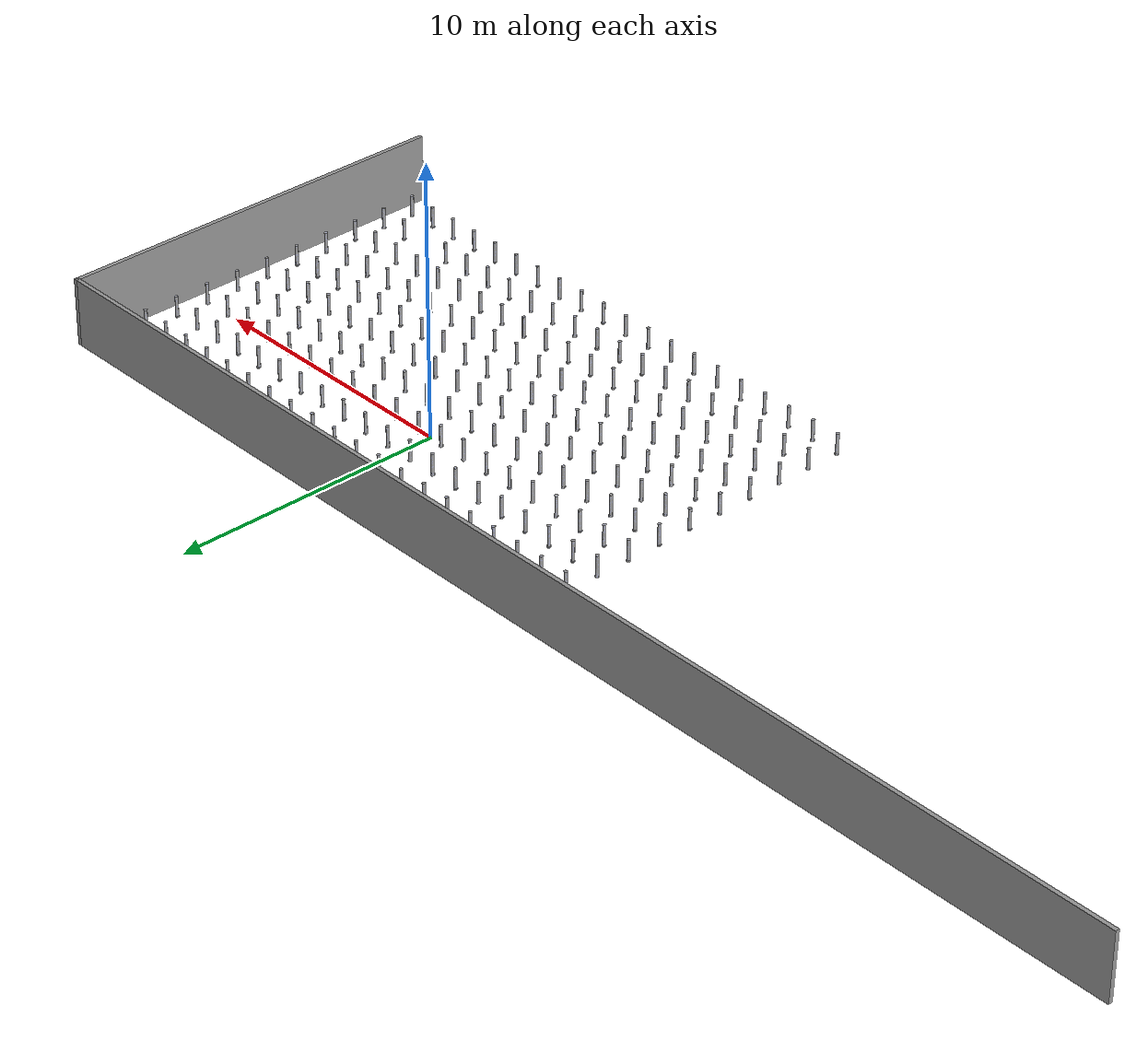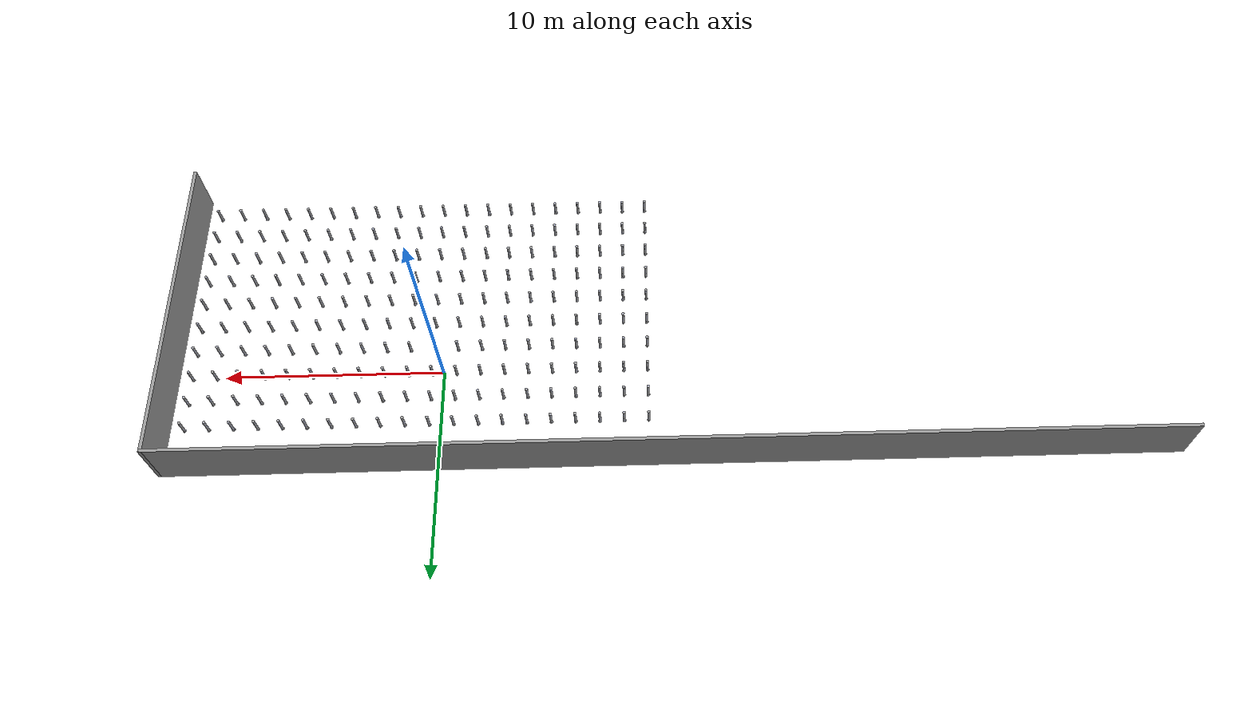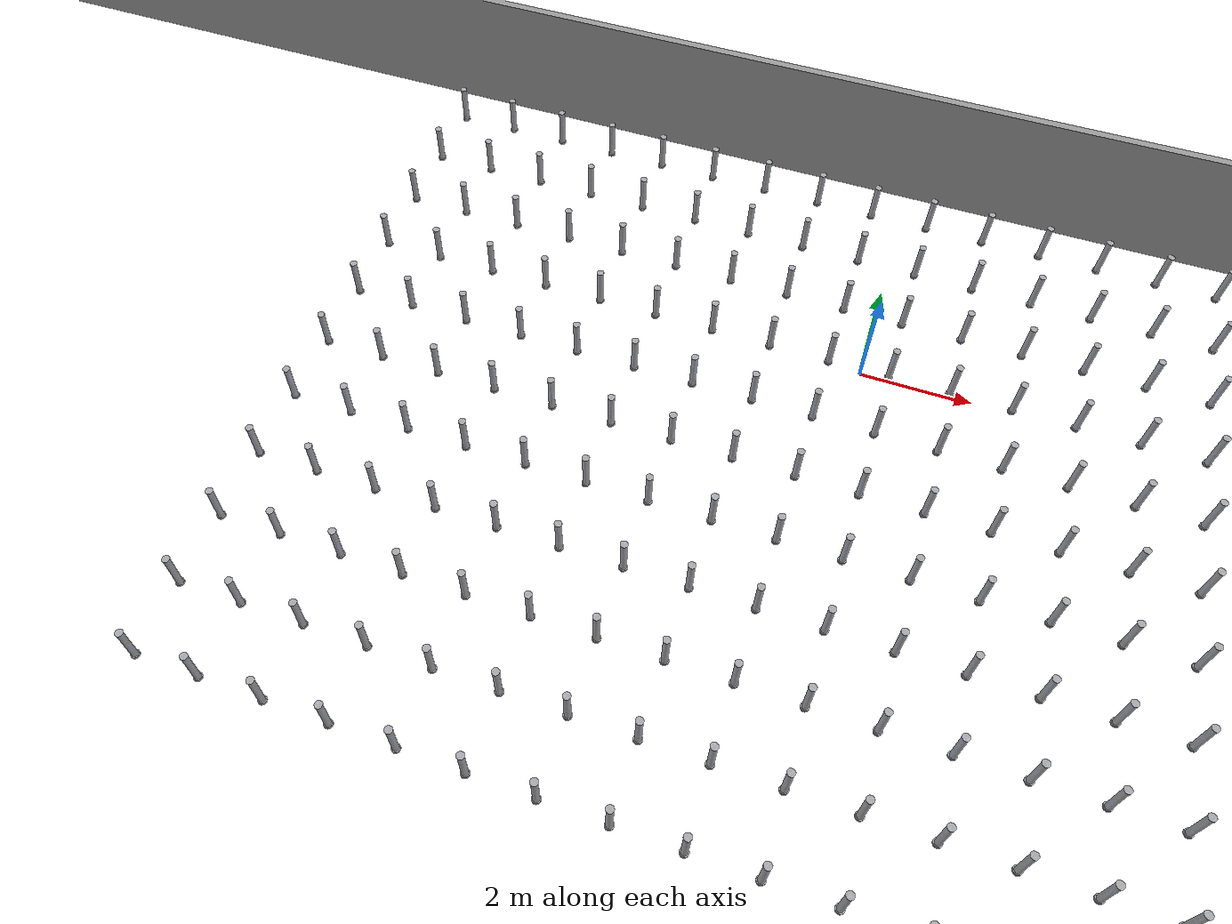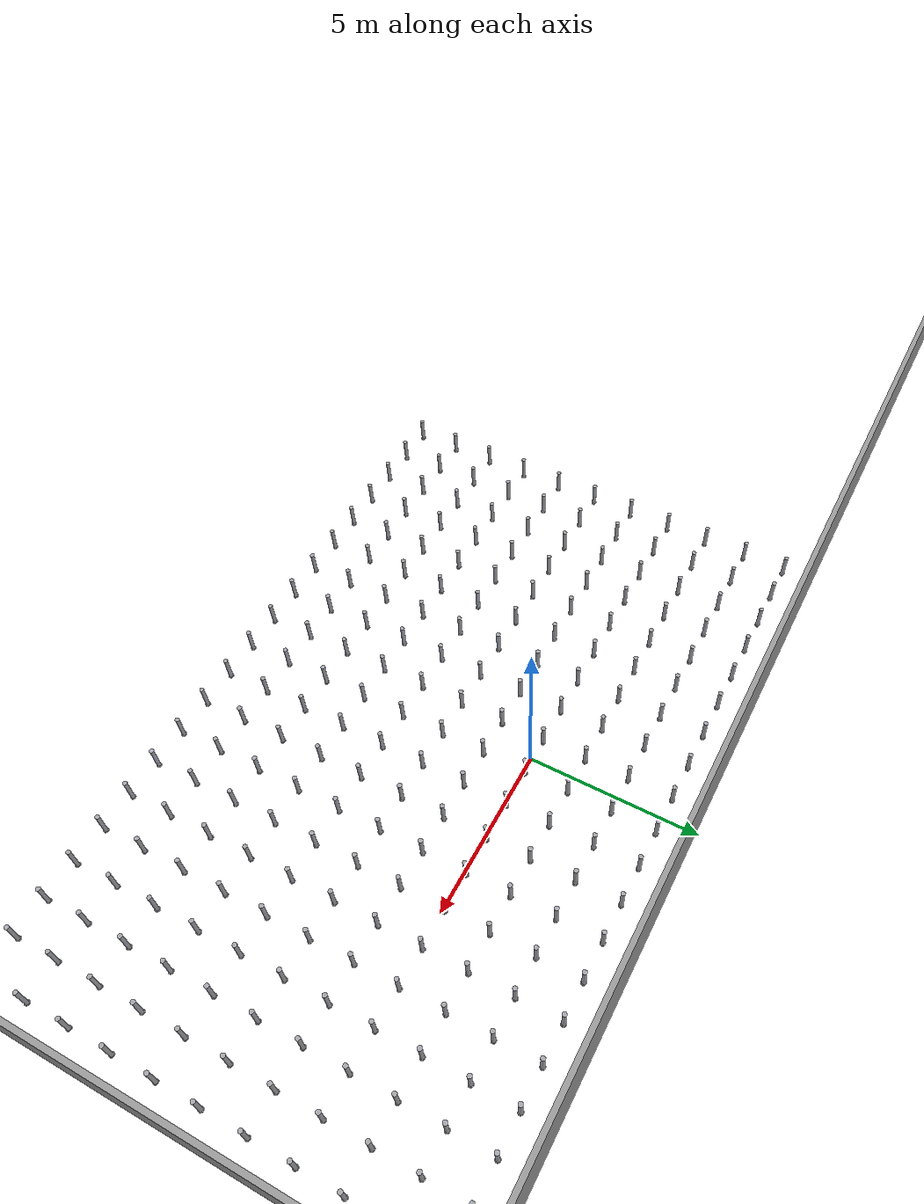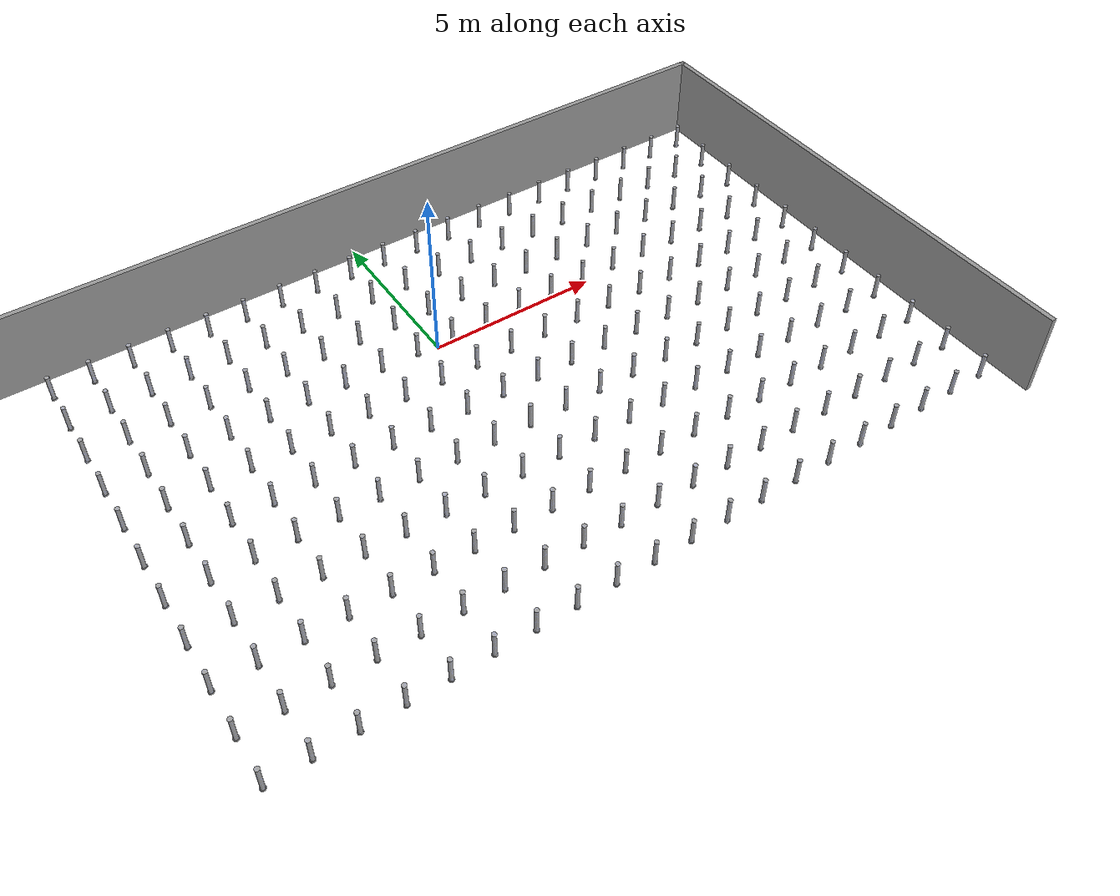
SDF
<sdf version="1.7">
 <model name="world">
  <pose>-10.459 -2.598 0 0 -0 0</pose>
  <link name="Wall_10">
   <collision name="Wall_10_Collision">
    <geometry><box><size>15.0001 0.15 2.5</size></box></geometry>
    <pose>0 0 1.25 0 -0 0</pose>
   </collision>
   <visual name="Wall_10_Visual">
    <pose>0 0 1.25 0 -0 0</pose>
    <geometry><box><size>15.0001 0.15 2.5</size></box></geometry>
    <material>
     <script><uri>file://media/materials/scripts/gazebo.material</uri><name>Gazebo/Grey</name></script>
     <ambient>1 1 1 1</ambient>
    </material>
    <meta><layer>0</layer></meta>
   </visual>
   <pose>22.68 0 0 0 -0 1.5708</pose>
  </link>
  <link name="Wall_11">
   <collision name="Wall_11_Collision">
    <geometry><box><size>45.51 0.15 2.5</size></box></geometry>
    <pose>0 0 1.25 0 -0 0</pose>
   </collision>
   <visual name="Wall_11_Visual">
    <pose>0 0 1.25 0 -0 0</pose>
    <geometry><box><size>45.51 0.15 2.5</size></box></geometry>
    <material>
     <script><uri>file://media/materials/scripts/gazebo.material</uri><name>Gazebo/Grey</name></script>
     <ambient>1 1 1 1</ambient>
    </material>
    <meta><layer>0</layer></meta>
   </visual>
   <pose>0 7.425 0 0 -0 3.14159</pose>
  </link>
  <include>
   <uri>model://pillar</uri>
   <name>pillar_1.0000000000000284_-6.5</name>
   <pose>1.0000000000000284 -6.5 0 0 0 0</pose>
  </include>
  <include>
   <uri>model://pillar</uri>
   <name>pillar_1.0000000000000284_-5.2</name>
   <pose>1.0000000000000284 -5.2 0 0 0 0</pose>
  </include>
  <include>
   <uri>model://pillar</uri>
   <name>pillar_1.0000000000000284_-3.9000000000000004</name>
   <pose>1.0000000000000284 -3.9000000000000004 0 0 0 0</pose>
  </include>
  <include>
   <uri>model://pillar</uri>
   <name>pillar_1.0000000000000284_-2.6000000000000005</name>
   <pose>1.0000000000000284 -2.6000000000000005 0 0 0 0</pose>
  </include>
  <include>
   <uri>model://pillar</uri>
   <name>pillar_1.0000000000000284_-1.3000000000000007</name>
   <pose>1.0000000000000284 -1.3000000000000007 0 0 0 0</pose>
  </include>
  <include>
   <uri>model://pillar</uri>
   <name>pillar_1.0000000000000284_-8.881784197001252e-16</name>
   <pose>1.0000000000000284 -8.881784197001252e-16 0 0 0 0</pose>
  </include>
  <include>
   <uri>model://pillar</uri>
   <name>pillar_1.0000000000000284_1.299999999999999</name>
   <pose>1.0000000000000284 1.299999999999999 0 0 0 0</pose>
  </include>
  <include>
   <uri>model://pillar</uri>
   <name>pillar_1.0000000000000284_2.599999999999998</name>
   <pose>1.0000000000000284 2.599999999999998 0 0 0 0</pose>
  </include>
  <include>
   <uri>model://pillar</uri>
   <name>pillar_1.0000000000000284_3.8999999999999986</name>
   <pose>1.0000000000000284 3.8999999999999986 0 0 0 0</pose>
  </include>
  <include>
   <uri>model://pillar</uri>
   <name>pillar_1.0000000000000284_5.199999999999999</name>
   <pose>1.0000000000000284 5.199999999999999 0 0 0 0</pose>
  </include>
  <include>
   <uri>model://pillar</uri>
   <name>pillar_1.0000000000000284_6.499999999999998</name>
   <pose>1.0000000000000284 6.499999999999998 0 0 0 0</pose>
  </include>
  <include>
   <uri>model://pillar</uri>
   <name>pillar_2.10000000000003_-6.5</name>
   <pose>2.10000000000003 -6.5 0 0 0 0</pose>
  </include>
  <include>
   <uri>model://pillar</uri>
   <name>pillar_2.10000000000003_-5.2</name>
   <pose>2.10000000000003 -5.2 0 0 0 0</pose>
  </include>
  <include>
   <uri>model://pillar</uri>
   <name>pillar_2.10000000000003_-3.9000000000000004</name>
   <pose>2.10000000000003 -3.9000000000000004 0 0 0 0</pose>
  </include>
  <include>
   <uri>model://pillar</uri>
   <name>pillar_2.10000000000003_-2.6000000000000005</name>
   <pose>2.10000000000003 -2.6000000000000005 0 0 0 0</pose>
  </include>
  <include>
   <uri>model://pillar</uri>
   <name>pillar_2.10000000000003_-1.3000000000000007</name>
   <pose>2.10000000000003 -1.3000000000000007 0 0 0 0</pose>
  </include>
  <include>
   <uri>model://pillar</uri>
   <name>pillar_2.10000000000003_-8.881784197001252e-16</name>
   <pose>2.10000000000003 -8.881784197001252e-16 0 0 0 0</pose>
  </include>
  <include>
   <uri>model://pillar</uri>
   <name>pillar_2.10000000000003_1.299999999999999</name>
   <pose>2.10000000000003 1.299999999999999 0 0 0 0</pose>
  </include>
  <include>
   <uri>model://pillar</uri>
   <name>pillar_2.10000000000003_2.599999999999998</name>
   <pose>2.10000000000003 2.599999999999998 0 0 0 0</pose>
  </include>
  <include>
   <uri>model://pillar</uri>
   <name>pillar_2.10000000000003_3.8999999999999986</name>
   <pose>2.10000000000003 3.8999999999999986 0 0 0 0</pose>
  </include>
  <include>
   <uri>model://pillar</uri>
   <name>pillar_2.10000000000003_5.199999999999999</name>
   <pose>2.10000000000003 5.199999999999999 0 0 0 0</pose>
  </include>
  <include>
   <uri>model://pillar</uri>
   <name>pillar_2.10000000000003_6.499999999999998</name>
   <pose>2.10000000000003 6.499999999999998 0 0 0 0</pose>
  </include>
  <include>
   <uri>model://pillar</uri>
   <name>pillar_3.2000000000000313_-6.5</name>
   <pose>3.2000000000000313 -6.5 0 0 0 0</pose>
  </include>
  <include>
   <uri>model://pillar</uri>
   <name>pillar_3.2000000000000313_-5.2</name>
   <pose>3.2000000000000313 -5.2 0 0 0 0</pose>
  </include>
  <include>
   <uri>model://pillar</uri>
   <name>pillar_3.2000000000000313_-3.9000000000000004</name>
   <pose>3.2000000000000313 -3.9000000000000004 0 0 0 0</pose>
  </include>
  <include>
   <uri>model://pillar</uri>
   <name>pillar_3.2000000000000313_-2.6000000000000005</name>
   <pose>3.2000000000000313 -2.6000000000000005 0 0 0 0</pose>
  </include>
  <include>
   <uri>model://pillar</uri>
   <name>pillar_3.2000000000000313_-1.3000000000000007</name>
   <pose>3.2000000000000313 -1.3000000000000007 0 0 0 0</pose>
  </include>
  <include>
   <uri>model://pillar</uri>
   <name>pillar_3.2000000000000313_-8.881784197001252e-16</name>
   <pose>3.2000000000000313 -8.881784197001252e-16 0 0 0 0</pose>
  </include>
  <include>
   <uri>model://pillar</uri>
   <name>pillar_3.2000000000000313_1.299999999999999</name>
   <pose>3.2000000000000313 1.299999999999999 0 0 0 0</pose>
  </include>
  <include>
   <uri>model://pillar</uri>
   <name>pillar_3.2000000000000313_2.599999999999998</name>
   <pose>3.2000000000000313 2.599999999999998 0 0 0 0</pose>
  </include>
  <include>
   <uri>model://pillar</uri>
   <name>pillar_3.2000000000000313_3.8999999999999986</name>
   <pose>3.2000000000000313 3.8999999999999986 0 0 0 0</pose>
  </include>
  <include>
   <uri>model://pillar</uri>
   <name>pillar_3.2000000000000313_5.199999999999999</name>
   <pose>3.2000000000000313 5.199999999999999 0 0 0 0</pose>
  </include>
  <include>
   <uri>model://pillar</uri>
   <name>pillar_3.2000000000000313_6.499999999999998</name>
   <pose>3.2000000000000313 6.499999999999998 0 0 0 0</pose>
  </include>
  <include>
   <uri>model://pillar</uri>
   <name>pillar_4.300000000000033_-6.5</name>
   <pose>4.300000000000033 -6.5 0 0 0 0</pose>
  </include>
  <include>
   <uri>model://pillar</uri>
   <name>pillar_4.300000000000033_-5.2</name>
   <pose>4.300000000000033 -5.2 0 0 0 0</pose>
  </include>
  <include>
   <uri>model://pillar</uri>
   <name>pillar_4.300000000000033_-3.9000000000000004</name>
   <pose>4.300000000000033 -3.9000000000000004 0 0 0 0</pose>
  </include>
  <include>
   <uri>model://pillar</uri>
   <name>pillar_4.300000000000033_-2.6000000000000005</name>
   <pose>4.300000000000033 -2.6000000000000005 0 0 0 0</pose>
  </include>
  <include>
   <uri>model://pillar</uri>
   <name>pillar_4.300000000000033_-1.3000000000000007</name>
   <pose>4.300000000000033 -1.3000000000000007 0 0 0 0</pose>
  </include>
  <include>
   <uri>model://pillar</uri>
   <name>pillar_4.300000000000033_-8.881784197001252e-16</name>
   <pose>4.300000000000033 -8.881784197001252e-16 0 0 0 0</pose>
  </include>
  <include>
   <uri>model://pillar</uri>
   <name>pillar_4.300000000000033_1.299999999999999</name>
   <pose>4.300000000000033 1.299999999999999 0 0 0 0</pose>
  </include>
  <include>
   <uri>model://pillar</uri>
   <name>pillar_4.300000000000033_2.599999999999998</name>
   <pose>4.300000000000033 2.599999999999998 0 0 0 0</pose>
  </include>
  <include>
   <uri>model://pillar</uri>
   <name>pillar_4.300000000000033_3.8999999999999986</name>
   <pose>4.300000000000033 3.8999999999999986 0 0 0 0</pose>
  </include>
  <include>
   <uri>model://pillar</uri>
   <name>pillar_4.300000000000033_5.199999999999999</name>
   <pose>4.300000000000033 5.199999999999999 0 0 0 0</pose>
  </include>
  <include>
   <uri>model://pillar</uri>
   <name>pillar_4.300000000000033_6.499999999999998</name>
   <pose>4.300000000000033 6.499999999999998 0 0 0 0</pose>
  </include>
  <include>
   <uri>model://pillar</uri>
   <name>pillar_5.400000000000034_-6.5</name>
   <pose>5.400000000000034 -6.5 0 0 0 0</pose>
  </include>
  <include>
   <uri>model://pillar</uri>
   <name>pillar_5.400000000000034_-5.2</name>
   <pose>5.400000000000034 -5.2 0 0 0 0</pose>
  </include>
  <include>
   <uri>model://pillar</uri>
   <name>pillar_5.400000000000034_-3.9000000000000004</name>
   <pose>5.400000000000034 -3.9000000000000004 0 0 0 0</pose>
  </include>
  <include>
   <uri>model://pillar</uri>
   <name>pillar_5.400000000000034_-2.6000000000000005</name>
   <pose>5.400000000000034 -2.6000000000000005 0 0 0 0</pose>
  </include>
  <include>
   <uri>model://pillar</uri>
   <name>pillar_5.400000000000034_-1.3000000000000007</name>
   <pose>5.400000000000034 -1.3000000000000007 0 0 0 0</pose>
  </include>
  <include>
   <uri>model://pillar</uri>
   <name>pillar_5.400000000000034_-8.881784197001252e-16</name>
   <pose>5.400000000000034 -8.881784197001252e-16 0 0 0 0</pose>
  </include>
  <include>
   <uri>model://pillar</uri>
   <name>pillar_5.400000000000034_1.299999999999999</name>
   <pose>5.400000000000034 1.299999999999999 0 0 0 0</pose>
  </include>
  <include>
   <uri>model://pillar</uri>
   <name>pillar_5.400000000000034_2.599999999999998</name>
   <pose>5.400000000000034 2.599999999999998 0 0 0 0</pose>
  </include>
  <include>
   <uri>model://pillar</uri>
   <name>pillar_5.400000000000034_3.8999999999999986</name>
   <pose>5.400000000000034 3.8999999999999986 0 0 0 0</pose>
  </include>
  <include>
   <uri>model://pillar</uri>
   <name>pillar_5.400000000000034_5.199999999999999</name>
   <pose>5.400000000000034 5.199999999999999 0 0 0 0</pose>
  </include>
  <include>
   <uri>model://pillar</uri>
   <name>pillar_5.400000000000034_6.499999999999998</name>
   <pose>5.400000000000034 6.499999999999998 0 0 0 0</pose>
  </include>
  <include>
   <uri>model://pillar</uri>
   <name>pillar_6.5000000000000355_-6.5</name>
   <pose>6.5000000000000355 -6.5 0 0 0 0</pose>
  </include>
  <include>
   <uri>model://pillar</uri>
   <name>pillar_6.5000000000000355_-5.2</name>
   <pose>6.5000000000000355 -5.2 0 0 0 0</pose>
  </include>
  <include>
   <uri>model://pillar</uri>
   <name>pillar_6.5000000000000355_-3.9000000000000004</name>
   <pose>6.5000000000000355 -3.9000000000000004 0 0 0 0</pose>
  </include>
  <include>
   <uri>model://pillar</uri>
   <name>pillar_6.5000000000000355_-2.6000000000000005</name>
   <pose>6.5000000000000355 -2.6000000000000005 0 0 0 0</pose>
  </include>
  <include>
   <uri>model://pillar</uri>
   <name>pillar_6.5000000000000355_-1.3000000000000007</name>
   <pose>6.5000000000000355 -1.3000000000000007 0 0 0 0</pose>
  </include>
  <include>
   <uri>model://pillar</uri>
   <name>pillar_6.5000000000000355_-8.881784197001252e-16</name>
   <pose>6.5000000000000355 -8.881784197001252e-16 0 0 0 0</pose>
  </include>
  <include>
   <uri>model://pillar</uri>
   <name>pillar_6.5000000000000355_1.299999999999999</name>
   <pose>6.5000000000000355 1.299999999999999 0 0 0 0</pose>
  </include>
  <include>
   <uri>model://pillar</uri>
   <name>pillar_6.5000000000000355_2.599999999999998</name>
   <pose>6.5000000000000355 2.599999999999998 0 0 0 0</pose>
  </include>
  <include>
   <uri>model://pillar</uri>
   <name>pillar_6.5000000000000355_3.8999999999999986</name>
   <pose>6.5000000000000355 3.8999999999999986 0 0 0 0</pose>
  </include>
  <include>
   <uri>model://pillar</uri>
   <name>pillar_6.5000000000000355_5.199999999999999</name>
   <pose>6.5000000000000355 5.199999999999999 0 0 0 0</pose>
  </include>
  <include>
   <uri>model://pillar</uri>
   <name>pillar_6.5000000000000355_6.499999999999998</name>
   <pose>6.5000000000000355 6.499999999999998 0 0 0 0</pose>
  </include>
  <include>
   <uri>model://pillar</uri>
   <name>pillar_7.600000000000037_-6.5</name>
   <pose>7.600000000000037 -6.5 0 0 0 0</pose>
  </include>
  <include>
   <uri>model://pillar</uri>
   <name>pillar_7.600000000000037_-5.2</name>
   <pose>7.600000000000037 -5.2 0 0 0 0</pose>
  </include>
  <include>
   <uri>model://pillar</uri>
   <name>pillar_7.600000000000037_-3.9000000000000004</name>
   <pose>7.600000000000037 -3.9000000000000004 0 0 0 0</pose>
  </include>
  <include>
   <uri>model://pillar</uri>
   <name>pillar_7.600000000000037_-2.6000000000000005</name>
   <pose>7.600000000000037 -2.6000000000000005 0 0 0 0</pose>
  </include>
  <include>
   <uri>model://pillar</uri>
   <name>pillar_7.600000000000037_-1.3000000000000007</name>
   <pose>7.600000000000037 -1.3000000000000007 0 0 0 0</pose>
  </include>
  <include>
   <uri>model://pillar</uri>
   <name>pillar_7.600000000000037_-8.881784197001252e-16</name>
   <pose>7.600000000000037 -8.881784197001252e-16 0 0 0 0</pose>
  </include>
  <include>
   <uri>model://pillar</uri>
   <name>pillar_7.600000000000037_1.299999999999999</name>
   <pose>7.600000000000037 1.299999999999999 0 0 0 0</pose>
  </include>
  <include>
   <uri>model://pillar</uri>
   <name>pillar_7.600000000000037_2.599999999999998</name>
   <pose>7.600000000000037 2.599999999999998 0 0 0 0</pose>
  </include>
  <include>
   <uri>model://pillar</uri>
   <name>pillar_7.600000000000037_3.8999999999999986</name>
   <pose>7.600000000000037 3.8999999999999986 0 0 0 0</pose>
  </include>
  <include>
   <uri>model://pillar</uri>
   <name>pillar_7.600000000000037_5.199999999999999</name>
   <pose>7.600000000000037 5.199999999999999 0 0 0 0</pose>
  </include>
  <include>
   <uri>model://pillar</uri>
   <name>pillar_7.600000000000037_6.499999999999998</name>
   <pose>7.600000000000037 6.499999999999998 0 0 0 0</pose>
  </include>
  <include>
   <uri>model://pillar</uri>
   <name>pillar_8.700000000000038_-6.5</name>
   <pose>8.700000000000038 -6.5 0 0 0 0</pose>
  </include>
  <include>
   <uri>model://pillar</uri>
   <name>pillar_8.700000000000038_-5.2</name>
   <pose>8.700000000000038 -5.2 0 0 0 0</pose>
  </include>
  <include>
   <uri>model://pillar</uri>
   <name>pillar_8.700000000000038_-3.9000000000000004</name>
   <pose>8.700000000000038 -3.9000000000000004 0 0 0 0</pose>
  </include>
  <include>
   <uri>model://pillar</uri>
   <name>pillar_8.700000000000038_-2.6000000000000005</name>
   <pose>8.700000000000038 -2.6000000000000005 0 0 0 0</pose>
  </include>
  <include>
   <uri>model://pillar</uri>
   <name>pillar_8.700000000000038_-1.3000000000000007</name>
   <pose>8.700000000000038 -1.3000000000000007 0 0 0 0</pose>
  </include>
  <include>
   <uri>model://pillar</uri>
   <name>pillar_8.700000000000038_-8.881784197001252e-16</name>
   <pose>8.700000000000038 -8.881784197001252e-16 0 0 0 0</pose>
  </include>
  <include>
   <uri>model://pillar</uri>
   <name>pillar_8.700000000000038_1.299999999999999</name>
   <pose>8.700000000000038 1.299999999999999 0 0 0 0</pose>
  </include>
  <include>
   <uri>model://pillar</uri>
   <name>pillar_8.700000000000038_2.599999999999998</name>
   <pose>8.700000000000038 2.599999999999998 0 0 0 0</pose>
  </include>
  <include>
   <uri>model://pillar</uri>
   <name>pillar_8.700000000000038_3.8999999999999986</name>
   <pose>8.700000000000038 3.8999999999999986 0 0 0 0</pose>
  </include>
  <include>
   <uri>model://pillar</uri>
   <name>pillar_8.700000000000038_5.199999999999999</name>
   <pose>8.700000000000038 5.199999999999999 0 0 0 0</pose>
  </include>
  <include>
   <uri>model://pillar</uri>
   <name>pillar_8.700000000000038_6.499999999999998</name>
   <pose>8.700000000000038 6.499999999999998 0 0 0 0</pose>
  </include>
  <include>
   <uri>model://pillar</uri>
   <name>pillar_9.80000000000004_-6.5</name>
   <pose>9.80000000000004 -6.5 0 0 0 0</pose>
  </include>
  <include>
   <uri>model://pillar</uri>
   <name>pillar_9.80000000000004_-5.2</name>
   <pose>9.80000000000004 -5.2 0 0 0 0</pose>
  </include>
  <include>
   <uri>model://pillar</uri>
   <name>pillar_9.80000000000004_-3.9000000000000004</name>
   <pose>9.80000000000004 -3.9000000000000004 0 0 0 0</pose>
  </include>
  <include>
   <uri>model://pillar</uri>
   <name>pillar_9.80000000000004_-2.6000000000000005</name>
   <pose>9.80000000000004 -2.6000000000000005 0 0 0 0</pose>
  </include>
  <include>
   <uri>model://pillar</uri>
   <name>pillar_9.80000000000004_-1.3000000000000007</name>
   <pose>9.80000000000004 -1.3000000000000007 0 0 0 0</pose>
  </include>
  <include>
   <uri>model://pillar</uri>
   <name>pillar_9.80000000000004_-8.881784197001252e-16</name>
   <pose>9.80000000000004 -8.881784197001252e-16 0 0 0 0</pose>
  </include>
  <include>
   <uri>model://pillar</uri>
   <name>pillar_9.80000000000004_1.299999999999999</name>
   <pose>9.80000000000004 1.299999999999999 0 0 0 0</pose>
  </include>
  <include>
   <uri>model://pillar</uri>
   <name>pillar_9.80000000000004_2.599999999999998</name>
   <pose>9.80000000000004 2.599999999999998 0 0 0 0</pose>
  </include>
  <include>
   <uri>model://pillar</uri>
   <name>pillar_9.80000000000004_3.8999999999999986</name>
   <pose>9.80000000000004 3.8999999999999986 0 0 0 0</pose>
  </include>
  <include>
   <uri>model://pillar</uri>
   <name>pillar_9.80000000000004_5.199999999999999</name>
   <pose>9.80000000000004 5.199999999999999 0 0 0 0</pose>
  </include>
  <include>
   <uri>model://pillar</uri>
   <name>pillar_9.80000000000004_6.499999999999998</name>
   <pose>9.80000000000004 6.499999999999998 0 0 0 0</pose>
  </include>
  <include>
   <uri>model://pillar</uri>
   <name>pillar_10.900000000000041_-6.5</name>
   <pose>10.900000000000041 -6.5 0 0 0 0</pose>
  </include>
  <include>
   <uri>model://pillar</uri>
   <name>pillar_10.900000000000041_-5.2</name>
   <pose>10.900000000000041 -5.2 0 0 0 0</pose>
  </include>
  <include>
   <uri>model://pillar</uri>
   <name>pillar_10.900000000000041_-3.9000000000000004</name>
   <pose>10.900000000000041 -3.9000000000000004 0 0 0 0</pose>
  </include>
  <include>
   <uri>model://pillar</uri>
   <name>pillar_10.900000000000041_-2.6000000000000005</name>
   <pose>10.900000000000041 -2.6000000000000005 0 0 0 0</pose>
  </include>
  <include>
   <uri>model://pillar</uri>
   <name>pillar_10.900000000000041_-1.3000000000000007</name>
   <pose>10.900000000000041 -1.3000000000000007 0 0 0 0</pose>
  </include>
  <include>
   <uri>model://pillar</uri>
   <name>pillar_10.900000000000041_-8.881784197001252e-16</name>
   <pose>10.900000000000041 -8.881784197001252e-16 0 0 0 0</pose>
  </include>
  <include>
   <uri>model://pillar</uri>
   <name>pillar_10.900000000000041_1.299999999999999</name>
   <pose>10.900000000000041 1.299999999999999 0 0 0 0</pose>
  </include>
  <include>
   <uri>model://pillar</uri>
   <name>pillar_10.900000000000041_2.599999999999998</name>
   <pose>10.900000000000041 2.599999999999998 0 0 0 0</pose>
  </include>
  <include>
   <uri>model://pillar</uri>
   <name>pillar_10.900000000000041_3.8999999999999986</name>
   <pose>10.900000000000041 3.8999999999999986 0 0 0 0</pose>
  </include>
  <include>
   <uri>model://pillar</uri>
   <name>pillar_10.900000000000041_5.199999999999999</name>
   <pose>10.900000000000041 5.199999999999999 0 0 0 0</pose>
  </include>
  <include>
   <uri>model://pillar</uri>
   <name>pillar_10.900000000000041_6.499999999999998</name>
   <pose>10.900000000000041 6.499999999999998 0 0 0 0</pose>
  </include>
  <include>
   <uri>model://pillar</uri>
   <name>pillar_12.000000000000043_-6.5</name>
   <pose>12.000000000000043 -6.5 0 0 0 0</pose>
  </include>
  <include>
   <uri>model://pillar</uri>
   <name>pillar_12.000000000000043_-5.2</name>
   <pose>12.000000000000043 -5.2 0 0 0 0</pose>
  </include>
  <include>
   <uri>model://pillar</uri>
   <name>pillar_12.000000000000043_-3.9000000000000004</name>
   <pose>12.000000000000043 -3.9000000000000004 0 0 0 0</pose>
  </include>
  <include>
   <uri>model://pillar</uri>
   <name>pillar_12.000000000000043_-2.6000000000000005</name>
   <pose>12.000000000000043 -2.6000000000000005 0 0 0 0</pose>
  </include>
  <include>
   <uri>model://pillar</uri>
   <name>pillar_12.000000000000043_-1.3000000000000007</name>
   <pose>12.000000000000043 -1.3000000000000007 0 0 0 0</pose>
  </include>
  <include>
   <uri>model://pillar</uri>
   <name>pillar_12.000000000000043_-8.881784197001252e-16</name>
   <pose>12.000000000000043 -8.881784197001252e-16 0 0 0 0</pose>
  </include>
  <include>
   <uri>model://pillar</uri>
   <name>pillar_12.000000000000043_1.299999999999999</name>
   <pose>12.000000000000043 1.299999999999999 0 0 0 0</pose>
  </include>
  <include>
   <uri>model://pillar</uri>
   <name>pillar_12.000000000000043_2.599999999999998</name>
   <pose>12.000000000000043 2.599999999999998 0 0 0 0</pose>
  </include>
  <include>
   <uri>model://pillar</uri>
   <name>pillar_12.000000000000043_3.8999999999999986</name>
   <pose>12.000000000000043 3.8999999999999986 0 0 0 0</pose>
  </include>
  <include>
   <uri>model://pillar</uri>
   <name>pillar_12.000000000000043_5.199999999999999</name>
   <pose>12.000000000000043 5.199999999999999 0 0 0 0</pose>
  </include>
  <include>
   <uri>model://pillar</uri>
   <name>pillar_12.000000000000043_6.499999999999998</name>
   <pose>12.000000000000043 6.499999999999998 0 0 0 0</pose>
  </include>
  <include>
   <uri>model://pillar</uri>
   <name>pillar_13.100000000000044_-6.5</name>
   <pose>13.100000000000044 -6.5 0 0 0 0</pose>
  </include>
  <include>
   <uri>model://pillar</uri>
   <name>pillar_13.100000000000044_-5.2</name>
   <pose>13.100000000000044 -5.2 0 0 0 0</pose>
  </include>
  <include>
   <uri>model://pillar</uri>
   <name>pillar_13.100000000000044_-3.9000000000000004</name>
   <pose>13.100000000000044 -3.9000000000000004 0 0 0 0</pose>
  </include>
  <include>
   <uri>model://pillar</uri>
   <name>pillar_13.100000000000044_-2.6000000000000005</name>
   <pose>13.100000000000044 -2.6000000000000005 0 0 0 0</pose>
  </include>
  <include>
   <uri>model://pillar</uri>
   <name>pillar_13.100000000000044_-1.3000000000000007</name>
   <pose>13.100000000000044 -1.3000000000000007 0 0 0 0</pose>
  </include>
  <include>
   <uri>model://pillar</uri>
   <name>pillar_13.100000000000044_-8.881784197001252e-16</name>
   <pose>13.100000000000044 -8.881784197001252e-16 0 0 0 0</pose>
  </include>
  <include>
   <uri>model://pillar</uri>
   <name>pillar_13.100000000000044_1.299999999999999</name>
   <pose>13.100000000000044 1.299999999999999 0 0 0 0</pose>
  </include>
  <include>
   <uri>model://pillar</uri>
   <name>pillar_13.100000000000044_2.599999999999998</name>
   <pose>13.100000000000044 2.599999999999998 0 0 0 0</pose>
  </include>
  <include>
   <uri>model://pillar</uri>
   <name>pillar_13.100000000000044_3.8999999999999986</name>
   <pose>13.100000000000044 3.8999999999999986 0 0 0 0</pose>
  </include>
  <include>
   <uri>model://pillar</uri>
   <name>pillar_13.100000000000044_5.199999999999999</name>
   <pose>13.100000000000044 5.199999999999999 0 0 0 0</pose>
  </include>
  <include>
   <uri>model://pillar</uri>
   <name>pillar_13.100000000000044_6.499999999999998</name>
   <pose>13.100000000000044 6.499999999999998 0 0 0 0</pose>
  </include>
  <include>
   <uri>model://pillar</uri>
   <name>pillar_14.200000000000045_-6.5</name>
   <pose>14.200000000000045 -6.5 0 0 0 0</pose>
  </include>
  <include>
   <uri>model://pillar</uri>
   <name>pillar_14.200000000000045_-5.2</name>
   <pose>14.200000000000045 -5.2 0 0 0 0</pose>
  </include>
  <include>
   <uri>model://pillar</uri>
   <name>pillar_14.200000000000045_-3.9000000000000004</name>
   <pose>14.200000000000045 -3.9000000000000004 0 0 0 0</pose>
  </include>
  <include>
   <uri>model://pillar</uri>
   <name>pillar_14.200000000000045_-2.6000000000000005</name>
   <pose>14.200000000000045 -2.6000000000000005 0 0 0 0</pose>
  </include>
  <include>
   <uri>model://pillar</uri>
   <name>pillar_14.200000000000045_-1.3000000000000007</name>
   <pose>14.200000000000045 -1.3000000000000007 0 0 0 0</pose>
  </include>
  <include>
   <uri>model://pillar</uri>
   <name>pillar_14.200000000000045_-8.881784197001252e-16</name>
   <pose>14.200000000000045 -8.881784197001252e-16 0 0 0 0</pose>
  </include>
  <include>
   <uri>model://pillar</uri>
   <name>pillar_14.200000000000045_1.299999999999999</name>
   <pose>14.200000000000045 1.299999999999999 0 0 0 0</pose>
  </include>
  <include>
   <uri>model://pillar</uri>
   <name>pillar_14.200000000000045_2.599999999999998</name>
   <pose>14.200000000000045 2.599999999999998 0 0 0 0</pose>
  </include>
  <include>
   <uri>model://pillar</uri>
   <name>pillar_14.200000000000045_3.8999999999999986</name>
   <pose>14.200000000000045 3.8999999999999986 0 0 0 0</pose>
  </include>
  <include>
   <uri>model://pillar</uri>
   <name>pillar_14.200000000000045_5.199999999999999</name>
   <pose>14.200000000000045 5.199999999999999 0 0 0 0</pose>
  </include>
  <include>
   <uri>model://pillar</uri>
   <name>pillar_14.200000000000045_6.499999999999998</name>
   <pose>14.200000000000045 6.499999999999998 0 0 0 0</pose>
  </include>
  <include>
   <uri>model://pillar</uri>
   <name>pillar_15.300000000000047_-6.5</name>
   <pose>15.300000000000047 -6.5 0 0 0 0</pose>
  </include>
  <include>
   <uri>model://pillar</uri>
   <name>pillar_15.300000000000047_-5.2</name>
   <pose>15.300000000000047 -5.2 0 0 0 0</pose>
  </include>
  <include>
   <uri>model://pillar</uri>
   <name>pillar_15.300000000000047_-3.9000000000000004</name>
   <pose>15.300000000000047 -3.9000000000000004 0 0 0 0</pose>
  </include>
  <include>
   <uri>model://pillar</uri>
   <name>pillar_15.300000000000047_-2.6000000000000005</name>
   <pose>15.300000000000047 -2.6000000000000005 0 0 0 0</pose>
  </include>
  <include>
   <uri>model://pillar</uri>
   <name>pillar_15.300000000000047_-1.3000000000000007</name>
   <pose>15.300000000000047 -1.3000000000000007 0 0 0 0</pose>
  </include>
  <include>
   <uri>model://pillar</uri>
   <name>pillar_15.300000000000047_-8.881784197001252e-16</name>
   <pose>15.300000000000047 -8.881784197001252e-16 0 0 0 0</pose>
  </include>
  <include>
   <uri>model://pillar</uri>
   <name>pillar_15.300000000000047_1.299999999999999</name>
   <pose>15.300000000000047 1.299999999999999 0 0 0 0</pose>
  </include>
  <include>
   <uri>model://pillar</uri>
   <name>pillar_15.300000000000047_2.599999999999998</name>
   <pose>15.300000000000047 2.599999999999998 0 0 0 0</pose>
  </include>
  <include>
   <uri>model://pillar</uri>
   <name>pillar_15.300000000000047_3.8999999999999986</name>
   <pose>15.300000000000047 3.8999999999999986 0 0 0 0</pose>
  </include>
  <include>
   <uri>model://pillar</uri>
   <name>pillar_15.300000000000047_5.199999999999999</name>
   <pose>15.300000000000047 5.199999999999999 0 0 0 0</pose>
  </include>
  <include>
   <uri>model://pillar</uri>
   <name>pillar_15.300000000000047_6.499999999999998</name>
   <pose>15.300000000000047 6.499999999999998 0 0 0 0</pose>
  </include>
  <include>
   <uri>model://pillar</uri>
   <name>pillar_16.40000000000005_-6.5</name>
   <pose>16.40000000000005 -6.5 0 0 0 0</pose>
  </include>
  <include>
   <uri>model://pillar</uri>
   <name>pillar_16.40000000000005_-5.2</name>
   <pose>16.40000000000005 -5.2 0 0 0 0</pose>
  </include>
  <include>
   <uri>model://pillar</uri>
   <name>pillar_16.40000000000005_-3.9000000000000004</name>
   <pose>16.40000000000005 -3.9000000000000004 0 0 0 0</pose>
  </include>
  <include>
   <uri>model://pillar</uri>
   <name>pillar_16.40000000000005_-2.6000000000000005</name>
   <pose>16.40000000000005 -2.6000000000000005 0 0 0 0</pose>
  </include>
  <include>
   <uri>model://pillar</uri>
   <name>pillar_16.40000000000005_-1.3000000000000007</name>
   <pose>16.40000000000005 -1.3000000000000007 0 0 0 0</pose>
  </include>
  <include>
   <uri>model://pillar</uri>
   <name>pillar_16.40000000000005_-8.881784197001252e-16</name>
   <pose>16.40000000000005 -8.881784197001252e-16 0 0 0 0</pose>
  </include>
  <include>
   <uri>model://pillar</uri>
   <name>pillar_16.40000000000005_1.299999999999999</name>
   <pose>16.40000000000005 1.299999999999999 0 0 0 0</pose>
  </include>
  <include>
   <uri>model://pillar</uri>
   <name>pillar_16.40000000000005_2.599999999999998</name>
   <pose>16.40000000000005 2.599999999999998 0 0 0 0</pose>
  </include>
  <include>
   <uri>model://pillar</uri>
   <name>pillar_16.40000000000005_3.8999999999999986</name>
   <pose>16.40000000000005 3.8999999999999986 0 0 0 0</pose>
  </include>
  <include>
   <uri>model://pillar</uri>
   <name>pillar_16.40000000000005_5.199999999999999</name>
   <pose>16.40000000000005 5.199999999999999 0 0 0 0</pose>
  </include>
  <include>
   <uri>model://pillar</uri>
   <name>pillar_16.40000000000005_6.499999999999998</name>
   <pose>16.40000000000005 6.499999999999998 0 0 0 0</pose>
  </include>
  <include>
   <uri>model://pillar</uri>
   <name>pillar_17.50000000000005_-6.5</name>
   <pose>17.50000000000005 -6.5 0 0 0 0</pose>
  </include>
  <include>
   <uri>model://pillar</uri>
   <name>pillar_17.50000000000005_-5.2</name>
   <pose>17.50000000000005 -5.2 0 0 0 0</pose>
  </include>
  <include>
   <uri>model://pillar</uri>
   <name>pillar_17.50000000000005_-3.9000000000000004</name>
   <pose>17.50000000000005 -3.9000000000000004 0 0 0 0</pose>
  </include>
  <include>
   <uri>model://pillar</uri>
   <name>pillar_17.50000000000005_-2.6000000000000005</name>
   <pose>17.50000000000005 -2.6000000000000005 0 0 0 0</pose>
  </include>
  <include>
   <uri>model://pillar</uri>
   <name>pillar_17.50000000000005_-1.3000000000000007</name>
   <pose>17.50000000000005 -1.3000000000000007 0 0 0 0</pose>
  </include>
  <include>
   <uri>model://pillar</uri>
   <name>pillar_17.50000000000005_-8.881784197001252e-16</name>
   <pose>17.50000000000005 -8.881784197001252e-16 0 0 0 0</pose>
  </include>
  <include>
   <uri>model://pillar</uri>
   <name>pillar_17.50000000000005_1.299999999999999</name>
   <pose>17.50000000000005 1.299999999999999 0 0 0 0</pose>
  </include>
  <include>
   <uri>model://pillar</uri>
   <name>pillar_17.50000000000005_2.599999999999998</name>
   <pose>17.50000000000005 2.599999999999998 0 0 0 0</pose>
  </include>
  <include>
   <uri>model://pillar</uri>
   <name>pillar_17.50000000000005_3.8999999999999986</name>
   <pose>17.50000000000005 3.8999999999999986 0 0 0 0</pose>
  </include>
  <include>
   <uri>model://pillar</uri>
   <name>pillar_17.50000000000005_5.199999999999999</name>
   <pose>17.50000000000005 5.199999999999999 0 0 0 0</pose>
  </include>
  <include>
   <uri>model://pillar</uri>
   <name>pillar_17.50000000000005_6.499999999999998</name>
   <pose>17.50000000000005 6.499999999999998 0 0 0 0</pose>
  </include>
  <include>
   <uri>model://pillar</uri>
   <name>pillar_18.60000000000005_-6.5</name>
   <pose>18.60000000000005 -6.5 0 0 0 0</pose>
  </include>
  <include>
   <uri>model://pillar</uri>
   <name>pillar_18.60000000000005_-5.2</name>
   <pose>18.60000000000005 -5.2 0 0 0 0</pose>
  </include>
  <include>
   <uri>model://pillar</uri>
   <name>pillar_18.60000000000005_-3.9000000000000004</name>
   <pose>18.60000000000005 -3.9000000000000004 0 0 0 0</pose>
  </include>
  <include>
   <uri>model://pillar</uri>
   <name>pillar_18.60000000000005_-2.6000000000000005</name>
   <pose>18.60000000000005 -2.6000000000000005 0 0 0 0</pose>
  </include>
  <include>
   <uri>model://pillar</uri>
   <name>pillar_18.60000000000005_-1.3000000000000007</name>
   <pose>18.60000000000005 -1.3000000000000007 0 0 0 0</pose>
  </include>
  <include>
   <uri>model://pillar</uri>
   <name>pillar_18.60000000000005_-8.881784197001252e-16</name>
   <pose>18.60000000000005 -8.881784197001252e-16 0 0 0 0</pose>
  </include>
  <include>
   <uri>model://pillar</uri>
   <name>pillar_18.60000000000005_1.299999999999999</name>
   <pose>18.60000000000005 1.299999999999999 0 0 0 0</pose>
  </include>
  <include>
   <uri>model://pillar</uri>
   <name>pillar_18.60000000000005_2.599999999999998</name>
   <pose>18.60000000000005 2.599999999999998 0 0 0 0</pose>
  </include>
  <include>
   <uri>model://pillar</uri>
   <name>pillar_18.60000000000005_3.8999999999999986</name>
   <pose>18.60000000000005 3.8999999999999986 0 0 0 0</pose>
  </include>
  <include>
   <uri>model://pillar</uri>
   <name>pillar_18.60000000000005_5.199999999999999</name>
   <pose>18.60000000000005 5.199999999999999 0 0 0 0</pose>
  </include>
  <include>
   <uri>model://pillar</uri>
   <name>pillar_18.60000000000005_6.499999999999998</name>
   <pose>18.60000000000005 6.499999999999998 0 0 0 0</pose>
  </include>
  <include>
   <uri>model://pillar</uri>
   <name>pillar_19.700000000000053_-6.5</name>
   <pose>19.700000000000053 -6.5 0 0 0 0</pose>
  </include>
  <include>
   <uri>model://pillar</uri>
   <name>pillar_19.700000000000053_-5.2</name>
   <pose>19.700000000000053 -5.2 0 0 0 0</pose>
  </include>
  <include>
   <uri>model://pillar</uri>
   <name>pillar_19.700000000000053_-3.9000000000000004</name>
   <pose>19.700000000000053 -3.9000000000000004 0 0 0 0</pose>
  </include>
  <include>
   <uri>model://pillar</uri>
   <name>pillar_19.700000000000053_-2.6000000000000005</name>
   <pose>19.700000000000053 -2.6000000000000005 0 0 0 0</pose>
  </include>
  <include>
   <uri>model://pillar</uri>
   <name>pillar_19.700000000000053_-1.3000000000000007</name>
   <pose>19.700000000000053 -1.3000000000000007 0 0 0 0</pose>
  </include>
  <include>
   <uri>model://pillar</uri>
   <name>pillar_19.700000000000053_-8.881784197001252e-16</name>
   <pose>19.700000000000053 -8.881784197001252e-16 0 0 0 0</pose>
  </include>
  <include>
   <uri>model://pillar</uri>
   <name>pillar_19.700000000000053_1.299999999999999</name>
   <pose>19.700000000000053 1.299999999999999 0 0 0 0</pose>
  </include>
  <include>
   <uri>model://pillar</uri>
   <name>pillar_19.700000000000053_2.599999999999998</name>
   <pose>19.700000000000053 2.599999999999998 0 0 0 0</pose>
  </include>
  <include>
   <uri>model://pillar</uri>
   <name>pillar_19.700000000000053_3.8999999999999986</name>
   <pose>19.700000000000053 3.8999999999999986 0 0 0 0</pose>
  </include>
  <include>
   <uri>model://pillar</uri>
   <name>pillar_19.700000000000053_5.199999999999999</name>
   <pose>19.700000000000053 5.199999999999999 0 0 0 0</pose>
  </include>
  <include>
   <uri>model://pillar</uri>
   <name>pillar_19.700000000000053_6.499999999999998</name>
   <pose>19.700000000000053 6.499999999999998 0 0 0 0</pose>
  </include>
  <include>
   <uri>model://pillar</uri>
   <name>pillar_20.800000000000054_-6.5</name>
   <pose>20.800000000000054 -6.5 0 0 0 0</pose>
  </include>
  <include>
   <uri>model://pillar</uri>
   <name>pillar_20.800000000000054_-5.2</name>
   <pose>20.800000000000054 -5.2 0 0 0 0</pose>
  </include>
  <include>
   <uri>model://pillar</uri>
   <name>pillar_20.800000000000054_-3.9000000000000004</name>
   <pose>20.800000000000054 -3.9000000000000004 0 0 0 0</pose>
  </include>
  <include>
   <uri>model://pillar</uri>
   <name>pillar_20.800000000000054_-2.6000000000000005</name>
   <pose>20.800000000000054 -2.6000000000000005 0 0 0 0</pose>
  </include>
  <include>
   <uri>model://pillar</uri>
   <name>pillar_20.800000000000054_-1.3000000000000007</name>
   <pose>20.800000000000054 -1.3000000000000007 0 0 0 0</pose>
  </include>
  <include>
   <uri>model://pillar</uri>
   <name>pillar_20.800000000000054_-8.881784197001252e-16</name>
   <pose>20.800000000000054 -8.881784197001252e-16 0 0 0 0</pose>
  </include>
  <include>
   <uri>model://pillar</uri>
   <name>pillar_20.800000000000054_1.299999999999999</name>
   <pose>20.800000000000054 1.299999999999999 0 0 0 0</pose>
  </include>
  <include>
   <uri>model://pillar</uri>
   <name>pillar_20.800000000000054_2.599999999999998</name>
   <pose>20.800000000000054 2.599999999999998 0 0 0 0</pose>
  </include>
  <include>
   <uri>model://pillar</uri>
   <name>pillar_20.800000000000054_3.8999999999999986</name>
   <pose>20.800000000000054 3.8999999999999986 0 0 0 0</pose>
  </include>
  <include>
   <uri>model://pillar</uri>
   <name>pillar_20.800000000000054_5.199999999999999</name>
   <pose>20.800000000000054 5.199999999999999 0 0 0 0</pose>
  </include>
  <include>
   <uri>model://pillar</uri>
   <name>pillar_20.800000000000054_6.499999999999998</name>
   <pose>20.800000000000054 6.499999999999998 0 0 0 0</pose>
  </include>
  <include>
   <uri>model://pillar</uri>
   <name>pillar_21.900000000000055_-6.5</name>
   <pose>21.900000000000055 -6.5 0 0 0 0</pose>
  </include>
  <include>
   <uri>model://pillar</uri>
   <name>pillar_21.900000000000055_-5.2</name>
   <pose>21.900000000000055 -5.2 0 0 0 0</pose>
  </include>
  <include>
   <uri>model://pillar</uri>
   <name>pillar_21.900000000000055_-3.9000000000000004</name>
   <pose>21.900000000000055 -3.9000000000000004 0 0 0 0</pose>
  </include>
  <include>
   <uri>model://pillar</uri>
   <name>pillar_21.900000000000055_-2.6000000000000005</name>
   <pose>21.900000000000055 -2.6000000000000005 0 0 0 0</pose>
  </include>
  <include>
   <uri>model://pillar</uri>
   <name>pillar_21.900000000000055_-1.3000000000000007</name>
   <pose>21.900000000000055 -1.3000000000000007 0 0 0 0</pose>
  </include>
  <include>
   <uri>model://pillar</uri>
   <name>pillar_21.900000000000055_-8.881784197001252e-16</name>
   <pose>21.900000000000055 -8.881784197001252e-16 0 0 0 0</pose>
  </include>
  <include>
   <uri>model://pillar</uri>
   <name>pillar_21.900000000000055_1.299999999999999</name>
   <pose>21.900000000000055 1.299999999999999 0 0 0 0</pose>
  </include>
  <include>
   <uri>model://pillar</uri>
   <name>pillar_21.900000000000055_2.599999999999998</name>
   <pose>21.900000000000055 2.599999999999998 0 0 0 0</pose>
  </include>
  <include>
   <uri>model://pillar</uri>
   <name>pillar_21.900000000000055_3.8999999999999986</name>
   <pose>21.900000000000055 3.8999999999999986 0 0 0 0</pose>
  </include>
  <include>
   <uri>model://pillar</uri>
   <name>pillar_21.900000000000055_5.199999999999999</name>
   <pose>21.900000000000055 5.199999999999999 0 0 0 0</pose>
  </include>
  <include>
   <uri>model://pillar</uri>
   <name>pillar_21.900000000000055_6.499999999999998</name>
   <pose>21.900000000000055 6.499999999999998 0 0 0 0</pose>
  </include>
  <static>1</static>
 </model>
</sdf>
